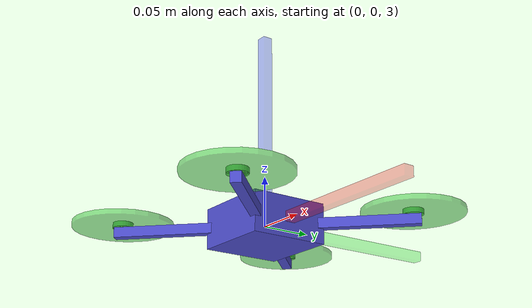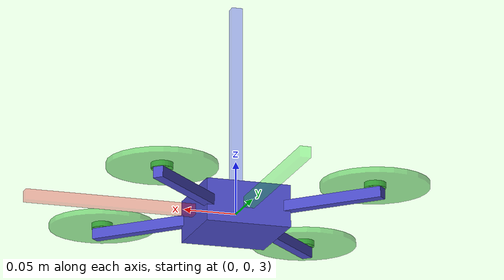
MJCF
<!--
Quadcopter with x configuration.
Front: Along body X-axis
-->

<mujoco model="quadrotor_x">
    <compiler angle="degree" inertiafromgeom="true" coordinate="local"/>
    <option	timestep="0.01" gravity="0 0 -9.81" density="1" viscosity="1e-5" integrator="RK4"/>

    <default>
        <joint armature="1" damping="1" limited="true"/>
        <geom conaffinity="0" condim="3" density="5.0" friction="1 0.5 0.5" margin="0.01" rgba="0.8 0.6 0.4 1"/>
    </default>

    <asset>
        <texture builtin="gradient" type="skybox" height="100" width="100" rgb1="1 1 1" rgb2="0 0 0"/>
        <texture name="texgeom" builtin="flat" height="1278" mark="cross" markrgb="1 1 1" random="0.01" rgb1="0.8 0.6 0.4" rgb2="0.8 0.6 0.4" type="cube" width="127"/>
        <texture name="texplane" builtin="checker" height="100" width="100" rgb1="0 0 0" rgb2="0.8 0.8 0.8" type="2d"/>
        <material name="MatPlane" reflectance="0.5" shininess="1" specular="1" texrepeat="60 60" texture="texplane"/>
        <material name="geom" texture="texgeom" texuniform="true"/>
    </asset>

    <worldbody>
        <light cutoff="100" diffuse="1 1 1" dir="-0 0 -1.3" directional="true" exponent="1" pos="0 0 1.3" specular=".1 .1 .1"/>
        <geom conaffinity="1" condim="3" material="MatPlane" name="floor" pos="0 0 0" rgba="0.4 0.3 0.3 1" size="5 5 0.2" type="plane"/>

        <body name="core" pos="0 0 3.0">
            <joint name="root" type="free" damping="0" armature="0" pos="0 0 0" limited="false"/>
            <camera name="track" mode="trackcom" pos="0 -3 1.0" xyaxes="1 0 0 0 0 1"/>

            <geom name="core_geom" type="box" pos="0 0 0" quat="1 0 0 0" size=".04 .04 .02" rgba=".3 .3 .8 1" mass=".1"/>

            <geom name="arm_front_left" type="box" pos=".07 .07 0" size=".05 .005 .005" quat=".924 0 0 .383" rgba=".3 .3 .8 1" mass=".025"/>
            <geom name="arm_front_right" type="box" pos=".07 -.07 0" size=".05 .005 .005" quat=".383 0 0 .924" rgba=".3 .3 .8 1" mass=".025"/>
            <geom name="arm_back_right" type="box" pos="-.07 -.07 0" size=".05 .005 .005" quat="-.383 0 0 .924" rgba=".3 .3 .8 1" mass=".025"/>
            <geom name="arm_back_left" type="box" pos="-.07 .07 0" size=".05 .005 .005" quat=".924 0 0 -.383" rgba=".3 .3 .8 1" mass=".025"/>

            <site name="motor_front_left" type="cylinder" pos=".1 .1 .0075" size=".01 .0025" quat="1 0 0 0" rgba=".3 .8 .3 1"/>
            <site name="motor_front_right" type="cylinder" pos=".1 -.1 .0075" size=".01 .0025" quat="1 0 0 0" rgba=".3 .8 .3 1"/>
            <site name="motor_back_right" type="cylinder" pos="-.1 -.1 .0075" size=".01 .0025" quat="1 0 0 0" rgba=".3 .8 .3 1"/>
            <site name="motor_back_left" type="cylinder" pos="-.1  .1 .0075" size=".01 .0025" quat="1 0 0 0" rgba=".3 .8 .3 1"/>

            <geom name="thruster_front_left" type="cylinder" pos=".1 .1 .0075" size=".05 .0025" quat="1 0 0 0" rgba=".3 .8 .3 0.6" mass=".025"/>
            <geom name="thruster_front_right" type="cylinder" pos=".1 -.1 .0075" size=".05 .0025" quat="1 0 0 0" rgba=".3 .8 .3 0.6" mass=".025"/>
            <geom name="thruster_back_right" type="cylinder" pos="-.1 -.1 .0075" size=".05 .0025" quat="1 0 0 0" rgba=".3 .8 .3 0.6" mass=".025"/>
            <geom name="thruster_back_left" type="cylinder" pos="-.1 .1 .0075" size=".05 .0025" quat="1 0 0 0" rgba=".3 .8 .3 0.6" mass=".025"/>

            <site name="x_axis" type="box" pos=".1 0 0" size=".1 .005 .005" quat="1 0 0 0" rgba="1 0 0 0.3"/>
            <site name="y_axis" type="box" pos="0 .1 0" size=".1 .005 .005" quat=".707 0 0 .707" rgba="0 1 0 0.3"/>
            <site name="z_axis" type="box" pos="0 0 .1" size=".1 .005 .005" quat="-.707 0 .707 0" rgba="0 0 1 0.3"/>

        </body>
    </worldbody>

    <actuator>
        <motor ctrllimited="true" ctrlrange="0 1" gear="0 0 1 0 0 -.1" site="motor_front_left"/>
        <motor ctrllimited="true" ctrlrange="0 1" gear="0 0 1 0 0 .1" site="motor_back_left"/>
        <motor ctrllimited="true" ctrlrange="0 1" gear="0 0 1 0 0 -.1" site="motor_back_right"/>
        <motor ctrllimited="true" ctrlrange="0 1" gear="0 0 1 0 0 .1" site="motor_front_right"/>
    </actuator>
    <keyframe>
        <key name="hover" qpos="0 0 0.1 1 0 0 0" ctrl="0.26487 0 0 0"/>
    </keyframe>
</mujoco>
